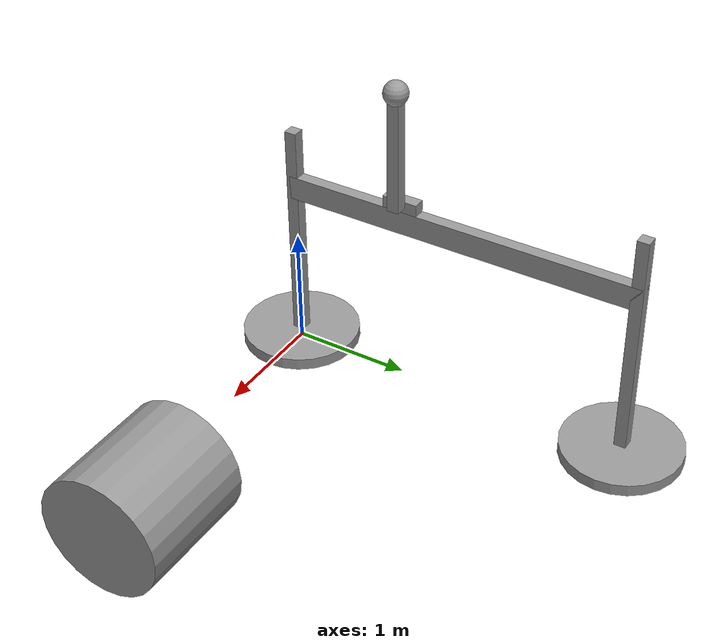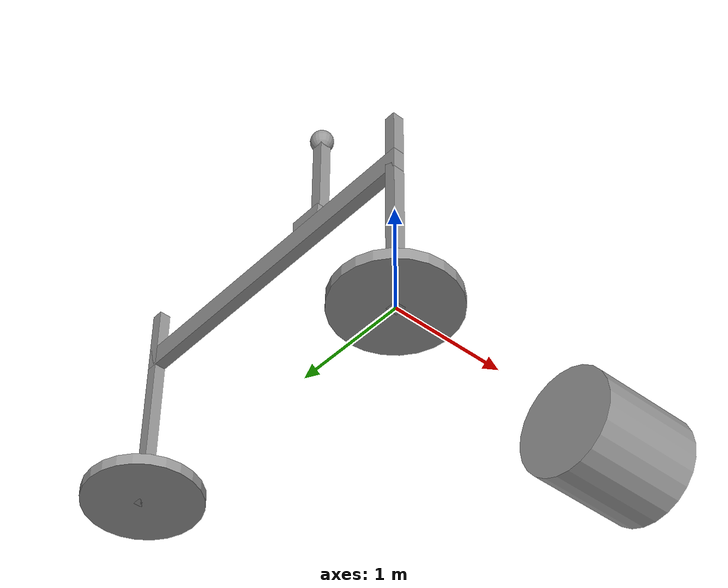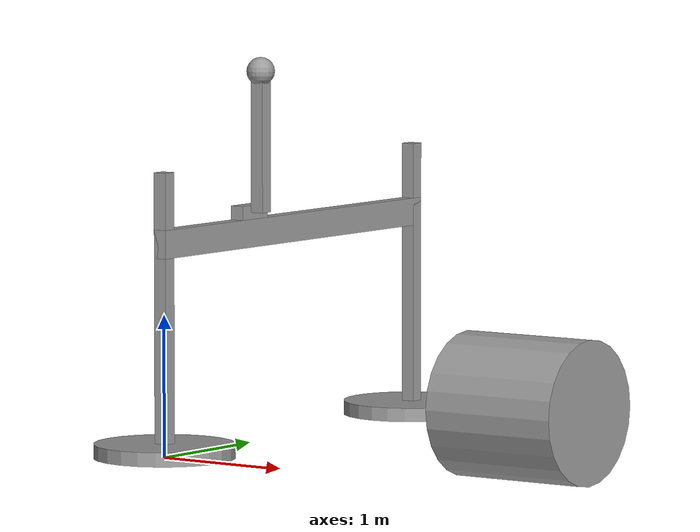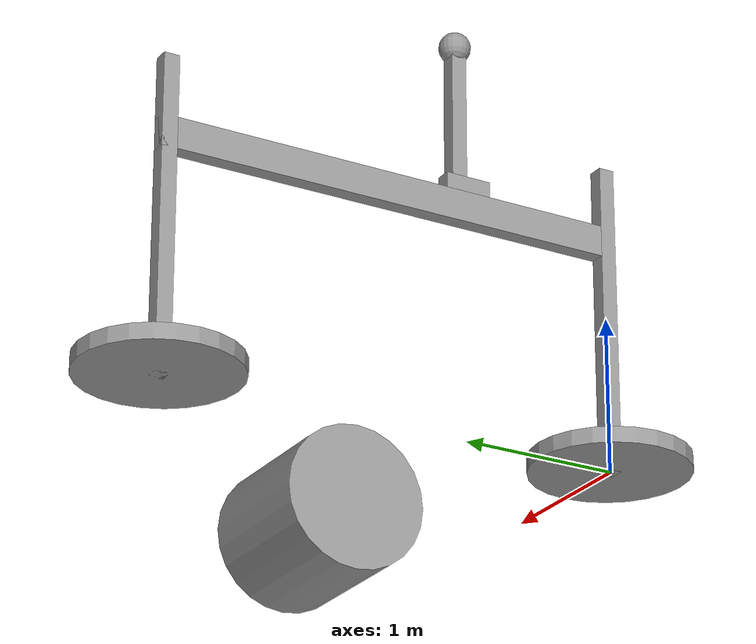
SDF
<?xml version='1.0'?>
<sdf version='1.7'>
  <model name='pendulum'>
    <link name='table_leg_left'>
      <inertial>
        <mass>1</mass>
        <inertia>
          <ixx>0.166667</ixx>
          <ixy>0</ixy>
          <ixz>0</ixz>
          <iyy>0.166667</iyy>
          <iyz>0</iyz>
          <izz>0.166667</izz>
        </inertia>
        <pose>0 0 0 0 -0 0</pose>
      </inertial>
      <pose>0 0 1 0 -0 0</pose>
      <self_collide>0</self_collide>
      <enable_wind>0</enable_wind>
      <kinematic>0</kinematic>
      <visual name='visual'>
        <pose>0 0 0 0 -0 0</pose>
        <geometry>
          <box>
            <size>0.1 0.1 2</size>
          </box>
        </geometry>
        <material>
          <lighting>1</lighting>
          <script>
            <uri>file://media/materials/scripts/gazebo.material</uri>
            <name>Gazebo/Grey</name>
          </script>
          <shader type='pixel'/>
          <emissive>0 0 0 1</emissive>
        </material>
        <transparency>0</transparency>
        <cast_shadows>1</cast_shadows>
      </visual>
      <collision name='collision'>
        <laser_retro>0</laser_retro>
        <max_contacts>10</max_contacts>
        <pose>0 0 0 0 -0 0</pose>
        <geometry>
          <box>
            <size>0.1 0.1 2</size>
          </box>
        </geometry>
        <surface>
          <friction>
            <ode>
              <mu>1</mu>
              <mu2>1</mu2>
              <fdir1>0 0 0</fdir1>
              <slip1>0</slip1>
              <slip2>0</slip2>
            </ode>
            <torsional>
              <coefficient>1</coefficient>
              <patch_radius>0</patch_radius>
              <surface_radius>0</surface_radius>
              <use_patch_radius>1</use_patch_radius>
              <ode>
                <slip>0</slip>
              </ode>
            </torsional>
          </friction>
          <bounce>
            <restitution_coefficient>0</restitution_coefficient>
            <threshold>1e+06</threshold>
          </bounce>
          <contact>
            <collide_without_contact>0</collide_without_contact>
            <collide_without_contact_bitmask>1</collide_without_contact_bitmask>
            <collide_bitmask>1</collide_bitmask>
            <ode>
              <soft_cfm>0</soft_cfm>
              <soft_erp>0.2</soft_erp>
              <kp>1e+13</kp>
              <kd>1</kd>
              <max_vel>0.01</max_vel>
              <min_depth>0</min_depth>
            </ode>
            <bullet>
              <split_impulse>1</split_impulse>
              <split_impulse_penetration_threshold>-0.01</split_impulse_penetration_threshold>
              <soft_cfm>0</soft_cfm>
              <soft_erp>0.2</soft_erp>
              <kp>1e+13</kp>
              <kd>1</kd>
            </bullet>
          </contact>
        </surface>
      </collision>
    </link>
    <link name='link_0'>
      <inertial>
        <mass>1</mass>
        <inertia>
          <ixx>0.145833</ixx>
          <ixy>0</ixy>
          <ixz>0</ixz>
          <iyy>0.145833</iyy>
          <iyz>0</iyz>
          <izz>0.125</izz>
        </inertia>
        <pose>0 0 0 0 -0 0</pose>
      </inertial>
      <pose>2.72904 0.484699 0.5 3.14159 1.57079 3.14159</pose>
      <gravity>1</gravity>
      <self_collide>0</self_collide>
      <kinematic>0</kinematic>
      <enable_wind>0</enable_wind>
      <visual name='visual'>
        <pose>0 0 0 0 -0 0</pose>
        <geometry>
          <cylinder>
            <radius>0.5</radius>
            <length>1</length>
          </cylinder>
        </geometry>
        <material>
          <lighting>1</lighting>
          <script>
            <uri>file://media/materials/scripts/gazebo.material</uri>
            <name>Gazebo/Grey</name>
          </script>
          <shader type='pixel'>
            <normal_map>__default__</normal_map>
          </shader>
          <ambient>0.3 0.3 0.3 1</ambient>
          <diffuse>0.7 0.7 0.7 1</diffuse>
          <specular>0.01 0.01 0.01 1</specular>
          <emissive>0 0 0 1</emissive>
        </material>
        <transparency>0</transparency>
        <cast_shadows>1</cast_shadows>
      </visual>
      <collision name='collision'>
        <laser_retro>0</laser_retro>
        <max_contacts>10</max_contacts>
        <pose>0 0 0 0 -0 0</pose>
        <geometry>
          <cylinder>
            <radius>0.5</radius>
            <length>1</length>
          </cylinder>
        </geometry>
        <surface>
          <friction>
            <ode>
              <mu>1</mu>
              <mu2>1</mu2>
              <fdir1>0 0 0</fdir1>
              <slip1>0</slip1>
              <slip2>0</slip2>
            </ode>
            <torsional>
              <coefficient>1</coefficient>
              <patch_radius>0</patch_radius>
              <surface_radius>0</surface_radius>
              <use_patch_radius>1</use_patch_radius>
              <ode>
                <slip>0</slip>
              </ode>
            </torsional>
          </friction>
          <bounce>
            <restitution_coefficient>0</restitution_coefficient>
            <threshold>1e+06</threshold>
          </bounce>
          <contact>
            <collide_without_contact>0</collide_without_contact>
            <collide_without_contact_bitmask>1</collide_without_contact_bitmask>
            <collide_bitmask>1</collide_bitmask>
            <ode>
              <soft_cfm>0</soft_cfm>
              <soft_erp>0.2</soft_erp>
              <kp>1e+13</kp>
              <kd>1</kd>
              <max_vel>0.01</max_vel>
              <min_depth>0</min_depth>
            </ode>
            <bullet>
              <split_impulse>1</split_impulse>
              <split_impulse_penetration_threshold>-0.01</split_impulse_penetration_threshold>
              <soft_cfm>0</soft_cfm>
              <soft_erp>0.2</soft_erp>
              <kp>1e+13</kp>
              <kd>1</kd>
            </bullet>
          </contact>
        </surface>
      </collision>
    </link>
    <link name='pendulum_head'>
      <inertial>
        <mass>1</mass>
        <inertia>
          <ixx>0.1</ixx>
          <ixy>0</ixy>
          <ixz>0</ixz>
          <iyy>0.1</iyy>
          <iyz>0</iyz>
          <izz>0.1</izz>
        </inertia>
        <pose>0 0 0 0 -0 0</pose>
      </inertial>
      <pose>0.1 1 2.65 0 -0 0</pose>
      <gravity>1</gravity>
      <self_collide>0</self_collide>
      <kinematic>0</kinematic>
      <enable_wind>0</enable_wind>
      <visual name='visual'>
        <pose>0 0 0 0 -0 0</pose>
        <geometry>
          <sphere>
            <radius>0.1</radius>
          </sphere>
        </geometry>
        <material>
          <lighting>1</lighting>
          <script>
            <uri>file://media/materials/scripts/gazebo.material</uri>
            <name>Gazebo/Grey</name>
          </script>
          <shader type='pixel'>
            <normal_map>__default__</normal_map>
          </shader>
          <ambient>0.3 0.3 0.3 1</ambient>
          <diffuse>0.7 0.7 0.7 1</diffuse>
          <specular>0.01 0.01 0.01 1</specular>
          <emissive>0 0 0 1</emissive>
        </material>
        <transparency>0</transparency>
        <cast_shadows>1</cast_shadows>
      </visual>
      <collision name='collision'>
        <laser_retro>0</laser_retro>
        <max_contacts>10</max_contacts>
        <pose>0 0 0 0 -0 0</pose>
        <geometry>
          <sphere>
            <radius>0.1</radius>
          </sphere>
        </geometry>
        <surface>
          <friction>
            <ode>
              <mu>1</mu>
              <mu2>1</mu2>
              <fdir1>0 0 0</fdir1>
              <slip1>0</slip1>
              <slip2>0</slip2>
            </ode>
            <torsional>
              <coefficient>1</coefficient>
              <patch_radius>0</patch_radius>
              <surface_radius>0</surface_radius>
              <use_patch_radius>1</use_patch_radius>
              <ode>
                <slip>0</slip>
              </ode>
            </torsional>
          </friction>
          <bounce>
            <restitution_coefficient>0</restitution_coefficient>
            <threshold>1e+06</threshold>
          </bounce>
          <contact>
            <collide_without_contact>0</collide_without_contact>
            <collide_without_contact_bitmask>1</collide_without_contact_bitmask>
            <collide_bitmask>1</collide_bitmask>
            <ode>
              <soft_cfm>0</soft_cfm>
              <soft_erp>0.2</soft_erp>
              <kp>1e+13</kp>
              <kd>1</kd>
              <max_vel>0.01</max_vel>
              <min_depth>0</min_depth>
            </ode>
            <bullet>
              <split_impulse>1</split_impulse>
              <split_impulse_penetration_threshold>-0.01</split_impulse_penetration_threshold>
              <soft_cfm>0</soft_cfm>
              <soft_erp>0.2</soft_erp>
              <kp>1e+13</kp>
              <kd>1</kd>
            </bullet>
          </contact>
        </surface>
      </collision>
    </link>
    <link name='pendulum_stick'>
      <inertial>
        <mass>0</mass>
        <inertia>
          <ixx>0</ixx>
          <ixy>0</ixy>
          <ixz>0</ixz>
          <iyy>0</iyy>
          <iyz>0</iyz>
          <izz>0</izz>
        </inertia>
        <pose>0 0 0 0 -0 0</pose>
      </inertial>
      <pose>0.1 1 1.65 0 -0 0</pose>
      <self_collide>1</self_collide>
      <enable_wind>0</enable_wind>
      <kinematic>0</kinematic>
      <gravity>1</gravity>
      <visual name='visual'>
        <pose>0 0 0.5 0 -0 0</pose>
        <geometry>
          <box>
            <size>0.1 0.1 1</size>
          </box>
        </geometry>
        <material>
          <lighting>1</lighting>
          <script>
            <uri>file://media/materials/scripts/gazebo.material</uri>
            <name>Gazebo/Grey</name>
          </script>
          <shader type='pixel'>
            <normal_map>__default__</normal_map>
          </shader>
          <emissive>0 0 0 1</emissive>
          <ambient>0.3 0.3 0.3 1</ambient>
          <diffuse>0.7 0.7 0.7 1</diffuse>
          <specular>0.01 0.01 0.01 1</specular>
        </material>
        <transparency>0</transparency>
        <cast_shadows>1</cast_shadows>
      </visual>
      <collision name='collision'>
        <laser_retro>0</laser_retro>
        <max_contacts>10</max_contacts>
        <pose>0 0 0.5 0 -0 0</pose>
        <geometry>
          <box>
            <size>0.1 0.1 1</size>
          </box>
        </geometry>
        <surface>
          <friction>
            <ode>
              <mu>1</mu>
              <mu2>1</mu2>
              <fdir1>0 0 0</fdir1>
              <slip1>0</slip1>
              <slip2>0</slip2>
            </ode>
            <torsional>
              <coefficient>1</coefficient>
              <patch_radius>0</patch_radius>
              <surface_radius>0</surface_radius>
              <use_patch_radius>1</use_patch_radius>
              <ode>
                <slip>0</slip>
              </ode>
            </torsional>
          </friction>
          <bounce>
            <restitution_coefficient>0</restitution_coefficient>
            <threshold>1e+06</threshold>
          </bounce>
          <contact>
            <collide_without_contact>0</collide_without_contact>
            <collide_without_contact_bitmask>1</collide_without_contact_bitmask>
            <collide_bitmask>1</collide_bitmask>
            <ode>
              <soft_cfm>0</soft_cfm>
              <soft_erp>0.2</soft_erp>
              <kp>1e+13</kp>
              <kd>1</kd>
              <max_vel>0.01</max_vel>
              <min_depth>0</min_depth>
            </ode>
            <bullet>
              <split_impulse>1</split_impulse>
              <split_impulse_penetration_threshold>-0.01</split_impulse_penetration_threshold>
              <soft_cfm>0</soft_cfm>
              <soft_erp>0.2</soft_erp>
              <kp>1e+13</kp>
              <kd>1</kd>
            </bullet>
          </contact>
        </surface>
      </collision>
    </link>
    <link name='pendulum_wagon'>
      <inertial>
        <mass>1</mass>
        <inertia>
          <ixx>0.166667</ixx>
          <ixy>0</ixy>
          <ixz>0</ixz>
          <iyy>0.166667</iyy>
          <iyz>0</iyz>
          <izz>0.166667</izz>
        </inertia>
        <pose>0 0 0 0 -0 0</pose>
      </inertial>
      <pose>0 1 1.65 0 -0 0</pose>
      <self_collide>1</self_collide>
      <enable_wind>0</enable_wind>
      <kinematic>0</kinematic>
      <visual name='visual'>
        <pose>0 0 0 0 -0 0</pose>
        <geometry>
          <box>
            <size>0.1 0.3 0.1</size>
          </box>
        </geometry>
        <material>
          <lighting>1</lighting>
          <script>
            <uri>file://media/materials/scripts/gazebo.material</uri>
            <name>Gazebo/Grey</name>
          </script>
          <shader type='pixel'/>
          <emissive>0 0 0 1</emissive>
        </material>
        <transparency>0</transparency>
        <cast_shadows>1</cast_shadows>
      </visual>
      <collision name='collision'>
        <laser_retro>0</laser_retro>
        <max_contacts>10</max_contacts>
        <pose>0 0 0 0 -0 0</pose>
        <geometry>
          <box>
            <size>0.1 0.3 0.1</size>
          </box>
        </geometry>
        <surface>
          <friction>
            <ode>
              <mu>0</mu>
              <mu2>0</mu2>
              <fdir1>0 0 0</fdir1>
              <slip1>0</slip1>
              <slip2>0</slip2>
            </ode>
            <torsional>
              <coefficient>1</coefficient>
              <patch_radius>0</patch_radius>
              <surface_radius>0</surface_radius>
              <use_patch_radius>1</use_patch_radius>
              <ode>
                <slip>0</slip>
              </ode>
            </torsional>
          </friction>
          <bounce>
            <restitution_coefficient>0</restitution_coefficient>
            <threshold>1e+06</threshold>
          </bounce>
          <contact>
            <collide_without_contact>0</collide_without_contact>
            <collide_without_contact_bitmask>1</collide_without_contact_bitmask>
            <collide_bitmask>1</collide_bitmask>
            <ode>
              <soft_cfm>0</soft_cfm>
              <soft_erp>0.2</soft_erp>
              <kp>1e+13</kp>
              <kd>1</kd>
              <max_vel>0.01</max_vel>
              <min_depth>0</min_depth>
            </ode>
            <bullet>
              <split_impulse>1</split_impulse>
              <split_impulse_penetration_threshold>-0.01</split_impulse_penetration_threshold>
              <soft_cfm>0</soft_cfm>
              <soft_erp>0.2</soft_erp>
              <kp>1e+13</kp>
              <kd>1</kd>
            </bullet>
          </contact>
        </surface>
      </collision>
    </link>
    <link name='table_leg_foot_left'>
      <inertial>
        <mass>0.107152</mass>
        <inertia>
          <ixx>0.00679952</ixx>
          <ixy>0</ixy>
          <ixz>0</ixz>
          <iyy>0.00679952</iyy>
          <iyz>0</iyz>
          <izz>0.013394</izz>
        </inertia>
        <pose>0 0 0 0 -0 0</pose>
      </inertial>
      <pose>0 0 0.05 0 -0 0</pose>
      <gravity>1</gravity>
      <self_collide>0</self_collide>
      <kinematic>0</kinematic>
      <enable_wind>0</enable_wind>
      <visual name='visual'>
        <pose>0 0 0 0 -0 0</pose>
        <geometry>
          <cylinder>
            <radius>0.5</radius>
            <length>0.0999997</length>
          </cylinder>
        </geometry>
        <material>
          <lighting>1</lighting>
          <script>
            <uri>file://media/materials/scripts/gazebo.material</uri>
            <name>Gazebo/Grey</name>
          </script>
          <shader type='pixel'>
            <normal_map>__default__</normal_map>
          </shader>
          <ambient>0.3 0.3 0.3 1</ambient>
          <diffuse>0.7 0.7 0.7 1</diffuse>
          <specular>0.01 0.01 0.01 1</specular>
          <emissive>0 0 0 1</emissive>
        </material>
        <transparency>0</transparency>
        <cast_shadows>1</cast_shadows>
      </visual>
      <collision name='collision'>
        <laser_retro>0</laser_retro>
        <max_contacts>10</max_contacts>
        <pose>0 0 0 0 -0 0</pose>
        <geometry>
          <cylinder>
            <radius>0.5</radius>
            <length>0.1</length>
          </cylinder>
        </geometry>
        <surface>
          <friction>
            <ode>
              <mu>1</mu>
              <mu2>1</mu2>
              <fdir1>0 0 0</fdir1>
              <slip1>0</slip1>
              <slip2>0</slip2>
            </ode>
            <torsional>
              <coefficient>1</coefficient>
              <patch_radius>0</patch_radius>
              <surface_radius>0</surface_radius>
              <use_patch_radius>1</use_patch_radius>
              <ode>
                <slip>0</slip>
              </ode>
            </torsional>
          </friction>
          <bounce>
            <restitution_coefficient>0</restitution_coefficient>
            <threshold>1e+06</threshold>
          </bounce>
          <contact>
            <collide_without_contact>0</collide_without_contact>
            <collide_without_contact_bitmask>1</collide_without_contact_bitmask>
            <collide_bitmask>1</collide_bitmask>
            <ode>
              <soft_cfm>0</soft_cfm>
              <soft_erp>0.2</soft_erp>
              <kp>1e+13</kp>
              <kd>1</kd>
              <max_vel>0.01</max_vel>
              <min_depth>0</min_depth>
            </ode>
            <bullet>
              <split_impulse>1</split_impulse>
              <split_impulse_penetration_threshold>-0.01</split_impulse_penetration_threshold>
              <soft_cfm>0</soft_cfm>
              <soft_erp>0.2</soft_erp>
              <kp>1e+13</kp>
              <kd>1</kd>
            </bullet>
          </contact>
        </surface>
      </collision>
    </link>
    <link name='table_leg_foot_left_clone'>
      <inertial>
        <mass>0.107152</mass>
        <inertia>
          <ixx>0.00679952</ixx>
          <ixy>0</ixy>
          <ixz>0</ixz>
          <iyy>0.00679952</iyy>
          <iyz>0</iyz>
          <izz>0.013394</izz>
        </inertia>
        <pose>0 0 0 0 -0 0</pose>
      </inertial>
      <pose>0 3 0.05 0 -0 0</pose>
      <gravity>1</gravity>
      <self_collide>0</self_collide>
      <kinematic>0</kinematic>
      <enable_wind>0</enable_wind>
      <visual name='visual'>
        <pose>0 0 0 0 -0 0</pose>
        <geometry>
          <cylinder>
            <radius>0.5</radius>
            <length>0.0999997</length>
          </cylinder>
        </geometry>
        <material>
          <lighting>1</lighting>
          <script>
            <uri>file://media/materials/scripts/gazebo.material</uri>
            <name>Gazebo/Grey</name>
          </script>
          <shader type='pixel'>
            <normal_map>__default__</normal_map>
          </shader>
          <ambient>0.3 0.3 0.3 1</ambient>
          <diffuse>0.7 0.7 0.7 1</diffuse>
          <specular>0.01 0.01 0.01 1</specular>
          <emissive>0 0 0 1</emissive>
        </material>
        <transparency>0</transparency>
        <cast_shadows>1</cast_shadows>
      </visual>
      <collision name='collision'>
        <laser_retro>0</laser_retro>
        <max_contacts>10</max_contacts>
        <pose>0 0 0 0 -0 0</pose>
        <geometry>
          <cylinder>
            <radius>0.5</radius>
            <length>0.1</length>
          </cylinder>
        </geometry>
        <surface>
          <friction>
            <ode>
              <mu>1</mu>
              <mu2>1</mu2>
              <fdir1>0 0 0</fdir1>
              <slip1>0</slip1>
              <slip2>0</slip2>
            </ode>
            <torsional>
              <coefficient>1</coefficient>
              <patch_radius>0</patch_radius>
              <surface_radius>0</surface_radius>
              <use_patch_radius>1</use_patch_radius>
              <ode>
                <slip>0</slip>
              </ode>
            </torsional>
          </friction>
          <bounce>
            <restitution_coefficient>0</restitution_coefficient>
            <threshold>1e+06</threshold>
          </bounce>
          <contact>
            <collide_without_contact>0</collide_without_contact>
            <collide_without_contact_bitmask>1</collide_without_contact_bitmask>
            <collide_bitmask>1</collide_bitmask>
            <ode>
              <soft_cfm>0</soft_cfm>
              <soft_erp>0.2</soft_erp>
              <kp>1e+13</kp>
              <kd>1</kd>
              <max_vel>0.01</max_vel>
              <min_depth>0</min_depth>
            </ode>
            <bullet>
              <split_impulse>1</split_impulse>
              <split_impulse_penetration_threshold>-0.01</split_impulse_penetration_threshold>
              <soft_cfm>0</soft_cfm>
              <soft_erp>0.2</soft_erp>
              <kp>1e+13</kp>
              <kd>1</kd>
            </bullet>
          </contact>
        </surface>
      </collision>
    </link>
    <link name='table_leg_right'>
      <inertial>
        <mass>1</mass>
        <inertia>
          <ixx>0.166667</ixx>
          <ixy>0</ixy>
          <ixz>0</ixz>
          <iyy>0.166667</iyy>
          <iyz>0</iyz>
          <izz>0.166667</izz>
        </inertia>
        <pose>0 0 0 0 -0 0</pose>
      </inertial>
      <pose>0 3 1 0 -0 0</pose>
      <self_collide>1</self_collide>
      <enable_wind>0</enable_wind>
      <kinematic>0</kinematic>
      <visual name='visual'>
        <pose>0 0 0 0 -0 0</pose>
        <geometry>
          <box>
            <size>0.1 0.1 2</size>
          </box>
        </geometry>
        <material>
          <lighting>1</lighting>
          <script>
            <uri>file://media/materials/scripts/gazebo.material</uri>
            <name>Gazebo/Grey</name>
          </script>
          <shader type='pixel'/>
          <emissive>0 0 0 1</emissive>
        </material>
        <transparency>0</transparency>
        <cast_shadows>1</cast_shadows>
      </visual>
      <collision name='collision'>
        <laser_retro>0</laser_retro>
        <max_contacts>10</max_contacts>
        <pose>0 0 0 0 -0 0</pose>
        <geometry>
          <box>
            <size>0.1 0.1 2</size>
          </box>
        </geometry>
        <surface>
          <friction>
            <ode>
              <mu>1</mu>
              <mu2>1</mu2>
              <fdir1>0 0 0</fdir1>
              <slip1>0</slip1>
              <slip2>0</slip2>
            </ode>
            <torsional>
              <coefficient>1</coefficient>
              <patch_radius>0</patch_radius>
              <surface_radius>0</surface_radius>
              <use_patch_radius>1</use_patch_radius>
              <ode>
                <slip>0</slip>
              </ode>
            </torsional>
          </friction>
          <bounce>
            <restitution_coefficient>0</restitution_coefficient>
            <threshold>1e+06</threshold>
          </bounce>
          <contact>
            <collide_without_contact>0</collide_without_contact>
            <collide_without_contact_bitmask>1</collide_without_contact_bitmask>
            <collide_bitmask>1</collide_bitmask>
            <ode>
              <soft_cfm>0</soft_cfm>
              <soft_erp>0.2</soft_erp>
              <kp>1e+13</kp>
              <kd>1</kd>
              <max_vel>0.01</max_vel>
              <min_depth>0</min_depth>
            </ode>
            <bullet>
              <split_impulse>1</split_impulse>
              <split_impulse_penetration_threshold>-0.01</split_impulse_penetration_threshold>
              <soft_cfm>0</soft_cfm>
              <soft_erp>0.2</soft_erp>
              <kp>1e+13</kp>
              <kd>1</kd>
            </bullet>
          </contact>
        </surface>
      </collision>
    </link>
    <link name='table_plate'>
      <inertial>
        <mass>1</mass>
        <inertia>
          <ixx>0.166667</ixx>
          <ixy>0</ixy>
          <ixz>0</ixz>
          <iyy>0.166667</iyy>
          <iyz>0</iyz>
          <izz>0.166667</izz>
        </inertia>
        <pose>0 0 0 0 -0 0</pose>
      </inertial>
      <pose>0 1.5 1.5 0 -0 0</pose>
      <self_collide>1</self_collide>
      <enable_wind>0</enable_wind>
      <kinematic>0</kinematic>
      <visual name='visual'>
        <pose>0 0 0 0 -0 0</pose>
        <geometry>
          <box>
            <size>0.1 3.1 0.2</size>
          </box>
        </geometry>
        <material>
          <lighting>1</lighting>
          <script>
            <uri>file://media/materials/scripts/gazebo.material</uri>
            <name>Gazebo/Grey</name>
          </script>
          <shader type='pixel'/>
          <emissive>0 0 0 1</emissive>
        </material>
        <transparency>0</transparency>
        <cast_shadows>1</cast_shadows>
      </visual>
      <collision name='collision'>
        <laser_retro>0</laser_retro>
        <max_contacts>10</max_contacts>
        <pose>0 0 0 0 -0 0</pose>
        <geometry>
          <box>
            <size>0.1 3.1 0.2</size>
          </box>
        </geometry>
        <surface>
          <friction>
            <ode>
              <mu>0</mu>
              <mu2>0</mu2>
              <fdir1>0 0 0</fdir1>
              <slip1>0</slip1>
              <slip2>0</slip2>
            </ode>
            <torsional>
              <coefficient>1</coefficient>
              <patch_radius>0</patch_radius>
              <surface_radius>0</surface_radius>
              <use_patch_radius>1</use_patch_radius>
              <ode>
                <slip>0</slip>
              </ode>
            </torsional>
          </friction>
          <bounce>
            <restitution_coefficient>0</restitution_coefficient>
            <threshold>1e+06</threshold>
          </bounce>
          <contact>
            <collide_without_contact>0</collide_without_contact>
            <collide_without_contact_bitmask>1</collide_without_contact_bitmask>
            <collide_bitmask>1</collide_bitmask>
            <ode>
              <soft_cfm>0</soft_cfm>
              <soft_erp>0.2</soft_erp>
              <kp>1e+13</kp>
              <kd>1</kd>
              <max_vel>0.01</max_vel>
              <min_depth>0</min_depth>
            </ode>
            <bullet>
              <split_impulse>1</split_impulse>
              <split_impulse_penetration_threshold>-0.01</split_impulse_penetration_threshold>
              <soft_cfm>0</soft_cfm>
              <soft_erp>0.2</soft_erp>
              <kp>1e+13</kp>
              <kd>1</kd>
            </bullet>
          </contact>
        </surface>
      </collision>
    </link>
    <joint name='pendulum_stick_JOINT_2' type='fixed'>
      <parent>pendulum_stick</parent>
      <child>pendulum_head</child>
      <pose>0 0 0 0 -0 0</pose>
      <physics>
        <ode>
          <limit>
            <cfm>0</cfm>
            <erp>0.2</erp>
          </limit>
          <suspension>
            <cfm>0</cfm>
            <erp>0.2</erp>
          </suspension>
        </ode>
      </physics>
    </joint>
    <joint name='pendulum_to_wagon' type='revolute'>
      <parent>pendulum_wagon</parent>
      <child>pendulum_stick</child>
      <pose>0 0 0 0 -0 0</pose>
      <axis>
        <xyz>1 0 0</xyz>
        <limit>
          <lower>-1.79769e+308</lower>
          <upper>1.79769e+308</upper>
          <effort>-1</effort>
          <velocity>-1</velocity>
        </limit>
        <dynamics>
          <spring_reference>0</spring_reference>
          <spring_stiffness>0</spring_stiffness>
          <damping>0</damping>
          <friction>0</friction>
        </dynamics>
      </axis>
      <physics>
        <ode>
          <limit>
            <cfm>0</cfm>
            <erp>0.2</erp>
          </limit>
          <suspension>
            <cfm>0</cfm>
            <erp>0.2</erp>
          </suspension>
        </ode>
      </physics>
    </joint>
    <joint name='table_leg_left_to_foot_joint' type='fixed'>
      <parent>table_leg_left</parent>
      <child>table_leg_foot_left</child>
      <pose>0 0 0 0 -0 0</pose>
      <physics>
        <ode>
          <limit>
            <cfm>0</cfm>
            <erp>0.2</erp>
          </limit>
          <suspension>
            <cfm>0</cfm>
            <erp>0.2</erp>
          </suspension>
        </ode>
      </physics>
    </joint>
    <joint name='table_leg_right_to_foot_joint' type='revolute'>
      <parent>table_leg_right</parent>
      <child>table_leg_foot_left_clone</child>
      <pose>0 0 0 0 -0 0</pose>
      <axis>
        <xyz>1 0 0</xyz>
        <limit>
          <lower>-1.79769e+308</lower>
          <upper>1.79769e+308</upper>
          <effort>-1</effort>
          <velocity>-1</velocity>
        </limit>
        <dynamics>
          <spring_reference>0</spring_reference>
          <spring_stiffness>0</spring_stiffness>
          <damping>0</damping>
          <friction>0</friction>
        </dynamics>
      </axis>
      <physics>
        <ode>
          <limit>
            <cfm>0</cfm>
            <erp>0.2</erp>
          </limit>
          <suspension>
            <cfm>0</cfm>
            <erp>0.2</erp>
          </suspension>
        </ode>
      </physics>
    </joint>
    <joint name='table_plate_to_left_table_leg' type='fixed'>
      <parent>table_plate</parent>
      <child>table_leg_left</child>
      <pose>0 0 0 0 -0 0</pose>
      <physics>
        <ode>
          <limit>
            <cfm>0</cfm>
            <erp>0.2</erp>
          </limit>
          <suspension>
            <cfm>0</cfm>
            <erp>0.2</erp>
          </suspension>
        </ode>
      </physics>
    </joint>
    <joint name='table_plate_to_right_table_leg' type='fixed'>
      <parent>table_plate</parent>
      <child>table_leg_right</child>
      <pose>0 0 0 0 -0 0</pose>
      <physics>
        <ode>
          <limit>
            <cfm>0</cfm>
            <erp>0.2</erp>
          </limit>
          <suspension>
            <cfm>0</cfm>
            <erp>0.2</erp>
          </suspension>
        </ode>
      </physics>
    </joint>
    <joint name='table_plate_to_wagon' type='prismatic'>
      <parent>table_plate</parent>
      <child>pendulum_wagon</child>
      <pose>0 0 0 0 -0 0</pose>
      <axis>
        <xyz>0 1 0</xyz>
        <limit>
          <lower>-1</lower>
          <upper>1</upper>
          <effort>-1</effort>
          <velocity>-1</velocity>
        </limit>
        <dynamics>
          <spring_reference>0</spring_reference>
          <spring_stiffness>0</spring_stiffness>
          <damping>0</damping>
          <friction>0</friction>
        </dynamics>
      </axis>
      <physics>
        <ode>
          <limit>
            <cfm>0</cfm>
            <erp>0.2</erp>
          </limit>
          <suspension>
            <cfm>0</cfm>
            <erp>0.2</erp>
          </suspension>
        </ode>
      </physics>
    </joint>
    <static>0</static>
    <allow_auto_disable>1</allow_auto_disable>
    <plugin name='pendulum_interface' filename='libpendulum_interface.so'/>
  </model>
</sdf>
